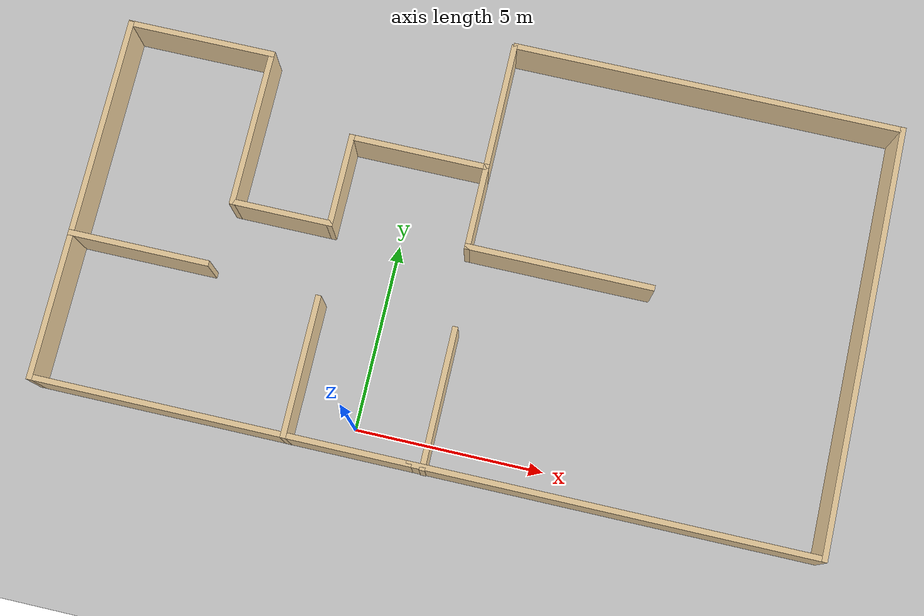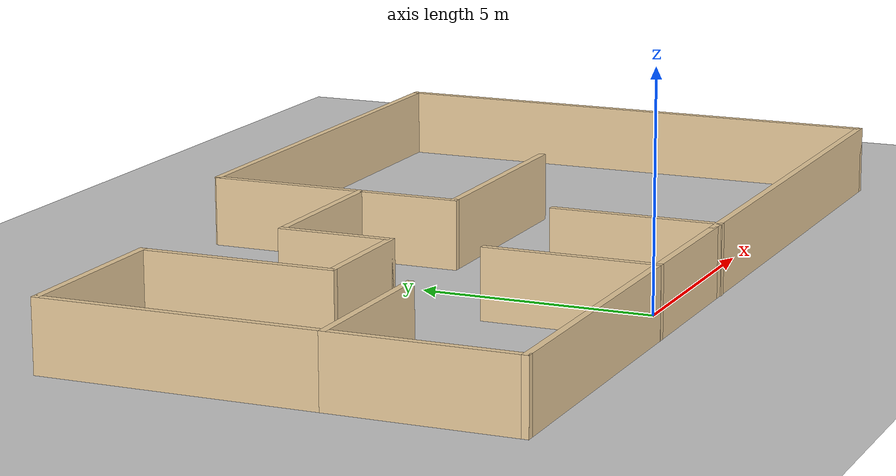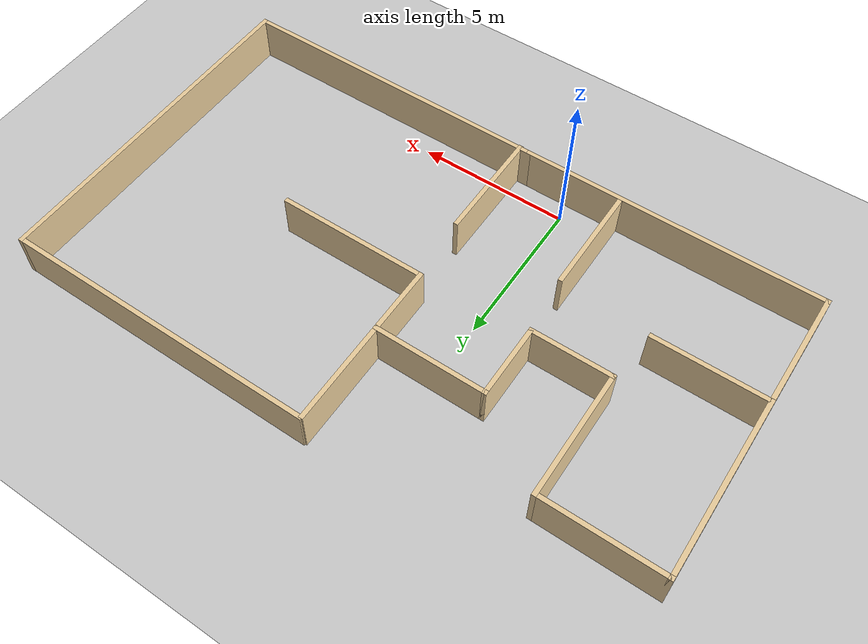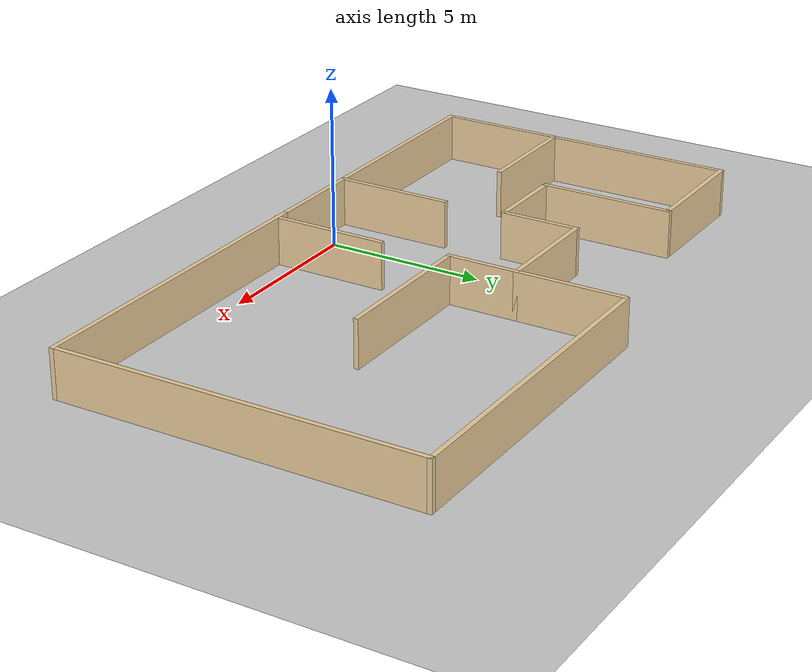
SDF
<?xml version="1.0"?>
<sdf version="1.4">
<world name="racecar_tunnel">

  <include>
    <uri>model://sun</uri>
  </include>

  <gui>
    <camera name='main'>
      <pose>0 0 10 0 1.571 0</pose>
    </camera>
  </gui>

  <model name="ground_plane">
    <static>true</static>
    <link name="link">
      <collision name="collision">
        <geometry>
          <plane>
            <normal>0 0 1</normal>
            <size>150 150</size>
          </plane>
        </geometry>
        <surface>
          <friction>
            <ode>
              <mu>100</mu>
              <mu2>50</mu2>
            </ode>
          </friction>
        </surface>
      </collision>
      <visual name="visual">
        <cast_shadows>false</cast_shadows>
        <geometry>
          <plane>
            <normal>0 0 1</normal>
            <size>150 150</size>
          </plane>
        </geometry>
        <material>
          <script>
            <uri>file://media/materials/scripts/gazebo.material</uri>
            <name>Gazebo/Grey</name>
          </script>
        </material>
      </visual>
    </link>
  </model>

  <include>
    <uri>model://racecar_description/models/model1</uri>
    <pose>2 5 0 0 0 0</pose>
  </include>

</world>
</sdf>

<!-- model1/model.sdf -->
<sdf version='1.7'>
  <model name='model1'>
    <pose>1.38796 1.199 0 0 -0 0</pose>
    <link name='Wall_10'>
      <collision name='Wall_10_Collision'>
        <geometry>
          <box>
            <size>4.27427 0.15 1.5</size>
          </box>
        </geometry>
        <pose>0 0 0.75 0 -0 0</pose>
      </collision>
      <visual name='Wall_10_Visual'>
        <pose>0 0 0.75 0 -0 0</pose>
        <geometry>
          <box>
            <size>4.27427 0.15 1.5</size>
          </box>
        </geometry>
        <material>
          <script>
            <uri>file://media/materials/scripts/gazebo.material</uri>
            <name>Gazebo/Grey</name>
          </script>
          <ambient>0.921569 0.807843 0.615686 1</ambient>
        </material>
        <meta>
          <layer>0</layer>
        </meta>
      </visual>
      <pose>-6.37496 1.971 0 0 -0 -1.5708</pose>
    </link>
    <link name='Wall_11'>
      <collision name='Wall_11_Collision'>
        <geometry>
          <box>
            <size>2.75 0.15 1.5</size>
          </box>
        </geometry>
        <pose>0 0 0.75 0 -0 0</pose>
      </collision>
      <visual name='Wall_11_Visual'>
        <pose>0 0 0.75 0 -0 0</pose>
        <geometry>
          <box>
            <size>2.75 0.15 1.5</size>
          </box>
        </geometry>
        <material>
          <script>
            <uri>file://media/materials/scripts/gazebo.material</uri>
            <name>Gazebo/Grey</name>
          </script>
          <ambient>0.921569 0.807843 0.615686 1</ambient>
        </material>
        <meta>
          <layer>0</layer>
        </meta>
      </visual>
      <pose>-5.07496 -0.091 0 0 -0 0</pose>
    </link>
    <link name='Wall_12'>
      <collision name='Wall_12_Collision'>
        <geometry>
          <box>
            <size>2.524 0.15 1.5</size>
          </box>
        </geometry>
        <pose>0 0 0.75 0 -0 0</pose>
      </collision>
      <visual name='Wall_12_Visual'>
        <pose>0 0 0.75 0 -0 0</pose>
        <geometry>
          <box>
            <size>2.524 0.15 1.5</size>
          </box>
        </geometry>
        <material>
          <script>
            <uri>file://media/materials/scripts/gazebo.material</uri>
            <name>Gazebo/Grey</name>
          </script>
          <ambient>0.921569 0.807843 0.615686 1</ambient>
        </material>
        <meta>
          <layer>0</layer>
        </meta>
      </visual>
      <pose>-3.77496 1.096 0 0 -0 1.5708</pose>
    </link>
    <link name='Wall_13'>
      <collision name='Wall_13_Collision'>
        <geometry>
          <box>
            <size>3.75 0.15 1.5</size>
          </box>
        </geometry>
        <pose>0 0 0.75 0 -0 0</pose>
      </collision>
      <visual name='Wall_13_Visual'>
        <pose>0 0 0.75 0 -0 0</pose>
        <geometry>
          <box>
            <size>3.75 0.15 1.5</size>
          </box>
        </geometry>
        <material>
          <script>
            <uri>file://media/materials/scripts/gazebo.material</uri>
            <name>Gazebo/Grey</name>
          </script>
          <ambient>0.921569 0.807843 0.615686 1</ambient>
        </material>
        <meta>
          <layer>0</layer>
        </meta>
      </visual>
      <pose>-1.97496 2.283 0 0 -0 0</pose>
    </link>
    <link name='Wall_14'>
      <collision name='Wall_14_Collision'>
        <geometry>
          <box>
            <size>2.33014 0.15 1.5</size>
          </box>
        </geometry>
        <pose>0 0 0.75 0 -0 0</pose>
      </collision>
      <visual name='Wall_14_Visual'>
        <pose>0 0 0.75 0 -0 0</pose>
        <geometry>
          <box>
            <size>2.33014 0.15 1.5</size>
          </box>
        </geometry>
        <material>
          <script>
            <uri>file://media/materials/scripts/gazebo.material</uri>
            <name>Gazebo/Grey</name>
          </script>
          <ambient>0.921569 0.807843 0.615686 1</ambient>
        </material>
        <meta>
          <layer>0</layer>
        </meta>
      </visual>
      <pose>-0.174964 1.193 0 0 -0 -1.5708</pose>
    </link>
    <link name='Wall_15'>
      <collision name='Wall_15_Collision'>
        <geometry>
          <box>
            <size>5 0.15 1.5</size>
          </box>
        </geometry>
        <pose>0 0 0.75 0 -0 0</pose>
      </collision>
      <visual name='Wall_15_Visual'>
        <pose>0 0 0.75 0 -0 0</pose>
        <geometry>
          <box>
            <size>5 0.15 1.5</size>
          </box>
        </geometry>
        <material>
          <script>
            <uri>file://media/materials/scripts/gazebo.material</uri>
            <name>Gazebo/Grey</name>
          </script>
          <ambient>0.921569 0.807843 0.615686 1</ambient>
        </material>
        <meta>
          <layer>0</layer>
        </meta>
      </visual>
      <pose>2.25004 0.103 0 0 -0 0</pose>
    </link>
    <link name='Wall_17'>
      <collision name='Wall_17_Collision'>
        <geometry>
          <box>
            <size>10.732 0.15 1.5</size>
          </box>
        </geometry>
        <pose>0 0 0.75 0 -0 0</pose>
      </collision>
      <visual name='Wall_17_Visual'>
        <pose>0 0 0.75 0 -0 0</pose>
        <geometry>
          <box>
            <size>10.732 0.15 1.5</size>
          </box>
        </geometry>
        <material>
          <script>
            <uri>file://media/materials/scripts/gazebo.material</uri>
            <name>Gazebo/Grey</name>
          </script>
          <ambient>0.921569 0.807843 0.615686 1</ambient>
        </material>
        <meta>
          <layer>0</layer>
        </meta>
      </visual>
      <pose>4.93404 -5.667 0 0 -0 0</pose>
    </link>
    <link name='Wall_18'>
      <collision name='Wall_18_Collision'>
        <geometry>
          <box>
            <size>11.5 0.15 1.5</size>
          </box>
        </geometry>
        <pose>0 0 0.75 0 -0 0</pose>
      </collision>
      <visual name='Wall_18_Visual'>
        <pose>0 0 0.75 0 -0 0</pose>
        <geometry>
          <box>
            <size>11.5 0.15 1.5</size>
          </box>
        </geometry>
        <material>
          <script>
            <uri>file://media/materials/scripts/gazebo.material</uri>
            <name>Gazebo/Grey</name>
          </script>
          <ambient>0.921569 0.807843 0.615686 1</ambient>
        </material>
        <meta>
          <layer>0</layer>
        </meta>
      </visual>
      <pose>10.225 0.008 0 0 -0 1.5708</pose>
    </link>
    <link name='Wall_19'>
      <collision name='Wall_19_Collision'>
        <geometry>
          <box>
            <size>10.5 0.15 1.5</size>
          </box>
        </geometry>
        <pose>0 0 0.75 0 -0 0</pose>
      </collision>
      <visual name='Wall_19_Visual'>
        <pose>0 0 0.75 0 -0 0</pose>
        <geometry>
          <box>
            <size>10.5 0.15 1.5</size>
          </box>
        </geometry>
        <material>
          <script>
            <uri>file://media/materials/scripts/gazebo.material</uri>
            <name>Gazebo/Grey</name>
          </script>
          <ambient>0.921569 0.807843 0.615686 1</ambient>
        </material>
        <meta>
          <layer>0</layer>
        </meta>
      </visual>
      <pose>5.05004 5.683 0 0 -0 3.14159</pose>
    </link>
    <link name='Wall_2'>
      <collision name='Wall_2_Collision'>
        <geometry>
          <box>
            <size>10.0182 0.15 1.5</size>
          </box>
        </geometry>
        <pose>0 0 0.75 0 -0 0</pose>
      </collision>
      <visual name='Wall_2_Visual'>
        <pose>0 0 0.75 0 -0 0</pose>
        <geometry>
          <box>
            <size>10.0182 0.15 1.5</size>
          </box>
        </geometry>
        <material>
          <script>
            <uri>file://media/materials/scripts/gazebo.material</uri>
            <name>Gazebo/Grey</name>
          </script>
          <ambient>0.921569 0.807843 0.615686 1</ambient>
        </material>
        <meta>
          <layer>0</layer>
        </meta>
      </visual>
      <pose>-5.29096 -5.667 0 0 -0 3.14159</pose>
    </link>
    <link name='Wall_21'>
      <collision name='Wall_21_Collision'>
        <geometry>
          <box>
            <size>3.5 0.15 1.5</size>
          </box>
        </geometry>
        <pose>0 0 0.75 0 -0 0</pose>
      </collision>
      <visual name='Wall_21_Visual'>
        <pose>0 0 0.75 0 -0 0</pose>
        <geometry>
          <box>
            <size>3.5 0.15 1.5</size>
          </box>
        </geometry>
        <material>
          <script>
            <uri>file://media/materials/scripts/gazebo.material</uri>
            <name>Gazebo/Grey</name>
          </script>
          <ambient>0.921569 0.807843 0.615686 1</ambient>
        </material>
        <meta>
          <layer>0</layer>
        </meta>
      </visual>
      <pose>-0.174964 3.958 0 0 -0 1.5708</pose>
    </link>
    <link name='Wall_23'>
      <collision name='Wall_23_Collision'>
        <geometry>
          <box>
            <size>3.75 0.15 1.5</size>
          </box>
        </geometry>
        <pose>0 0 0.75 0 -0 0</pose>
      </collision>
      <visual name='Wall_23_Visual'>
        <pose>0 0 0.75 0 -0 0</pose>
        <geometry>
          <box>
            <size>3.75 0.15 1.5</size>
          </box>
        </geometry>
        <material>
          <script>
            <uri>file://media/materials/scripts/gazebo.material</uri>
            <name>Gazebo/Grey</name>
          </script>
          <ambient>0.921569 0.807843 0.615686 1</ambient>
        </material>
        <meta>
          <layer>0</layer>
        </meta>
      </visual>
      <pose>-3.59896 -3.87 0 0 -0 1.5708</pose>
    </link>
    <link name='Wall_26'>
      <collision name='Wall_26_Collision'>
        <geometry>
          <box>
            <size>3.75 0.15 1.5</size>
          </box>
        </geometry>
        <pose>0 0 0.75 0 -0 0</pose>
      </collision>
      <visual name='Wall_26_Visual'>
        <pose>0 0 0.75 0 -0 0</pose>
        <geometry>
          <box>
            <size>3.75 0.15 1.5</size>
          </box>
        </geometry>
        <material>
          <script>
            <uri>file://media/materials/scripts/gazebo.material</uri>
            <name>Gazebo/Grey</name>
          </script>
          <ambient>0.921569 0.807843 0.615686 1</ambient>
        </material>
        <meta>
          <layer>0</layer>
        </meta>
      </visual>
      <pose>-0.003964 -3.883 0 0 -0 1.5708</pose>
    </link>
    <link name='Wall_3'>
      <collision name='Wall_3_Collision'>
        <geometry>
          <box>
            <size>4 0.15 1.5</size>
          </box>
        </geometry>
        <pose>0 0 0.75 0 -0 0</pose>
      </collision>
      <visual name='Wall_3_Visual'>
        <pose>0 0 0.75 0 -0 0</pose>
        <geometry>
          <box>
            <size>4 0.15 1.5</size>
          </box>
        </geometry>
        <material>
          <script>
            <uri>file://media/materials/scripts/gazebo.material</uri>
            <name>Gazebo/Grey</name>
          </script>
          <ambient>0.921569 0.807843 0.615686 1</ambient>
        </material>
        <meta>
          <layer>0</layer>
        </meta>
      </visual>
      <pose>-10.225 -3.742 0 0 -0 1.5708</pose>
    </link>
    <link name='Wall_4'>
      <collision name='Wall_4_Collision'>
        <geometry>
          <box>
            <size>3.75 0.15 1.5</size>
          </box>
        </geometry>
        <pose>0 0 0.75 0 -0 0</pose>
      </collision>
      <visual name='Wall_4_Visual'>
        <pose>0 0 0.75 0 -0 0</pose>
        <geometry>
          <box>
            <size>3.75 0.15 1.5</size>
          </box>
        </geometry>
        <material>
          <script>
            <uri>file://media/materials/scripts/gazebo.material</uri>
            <name>Gazebo/Grey</name>
          </script>
          <ambient>0.921569 0.807843 0.615686 1</ambient>
        </material>
        <meta>
          <layer>0</layer>
        </meta>
      </visual>
      <pose>-8.42496 -1.817 0 0 -0 0</pose>
    </link>
    <link name='Wall_6'>
      <collision name='Wall_6_Collision'>
        <geometry>
          <box>
            <size>6 0.15 1.5</size>
          </box>
        </geometry>
        <pose>0 0 0.75 0 -0 0</pose>
      </collision>
      <visual name='Wall_6_Visual'>
        <pose>0 0 0.75 0 -0 0</pose>
        <geometry>
          <box>
            <size>6 0.15 1.5</size>
          </box>
        </geometry>
        <material>
          <script>
            <uri>file://media/materials/scripts/gazebo.material</uri>
            <name>Gazebo/Grey</name>
          </script>
          <ambient>0.921569 0.807843 0.615686 1</ambient>
        </material>
        <meta>
          <layer>0</layer>
        </meta>
      </visual>
      <pose>-10.225 1.108 0 0 -0 1.5708</pose>
    </link>
    <link name='Wall_9'>
      <collision name='Wall_9_Collision'>
        <geometry>
          <box>
            <size>4 0.15 1.5</size>
          </box>
        </geometry>
        <pose>0 0 0.75 0 -0 0</pose>
      </collision>
      <visual name='Wall_9_Visual'>
        <pose>0 0 0.75 0 -0 0</pose>
        <geometry>
          <box>
            <size>4 0.15 1.5</size>
          </box>
        </geometry>
        <material>
          <script>
            <uri>file://media/materials/scripts/gazebo.material</uri>
            <name>Gazebo/Grey</name>
          </script>
          <ambient>0.921569 0.807843 0.615686 1</ambient>
        </material>
        <meta>
          <layer>0</layer>
        </meta>
      </visual>
      <pose>-8.29996 4.033 0 0 -0 0</pose>
    </link>
    <static>1</static>
  </model>
</sdf>
